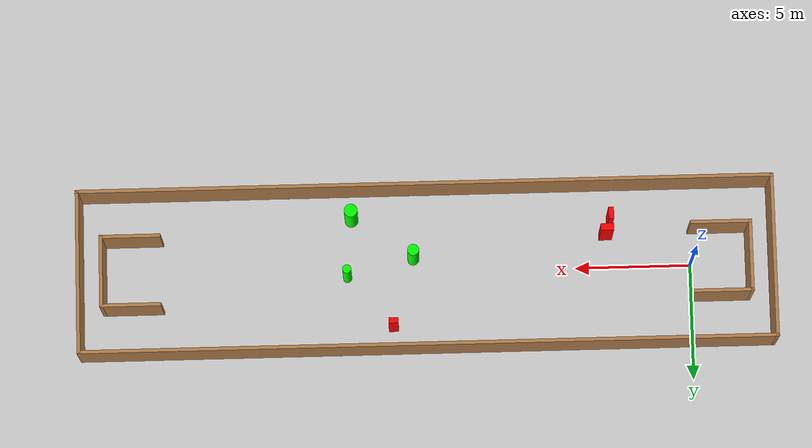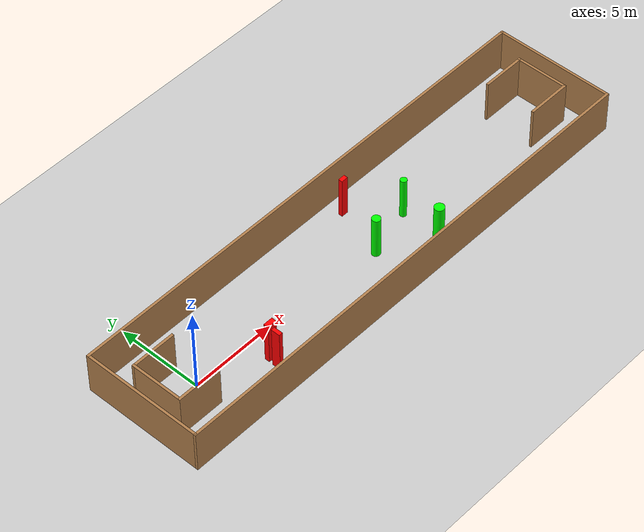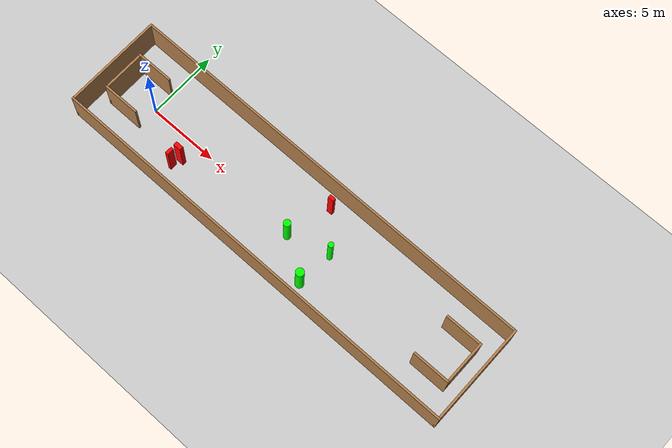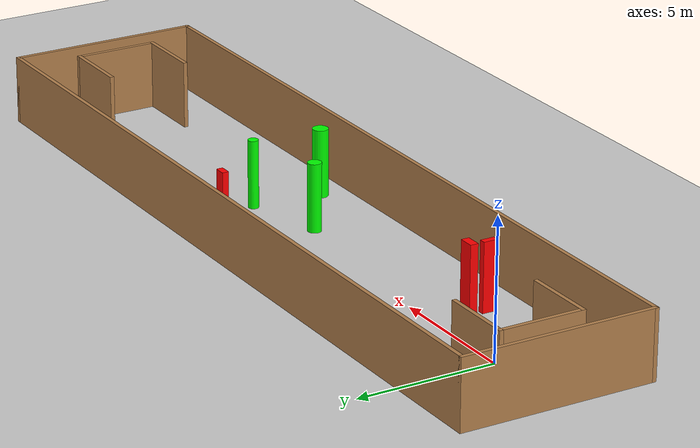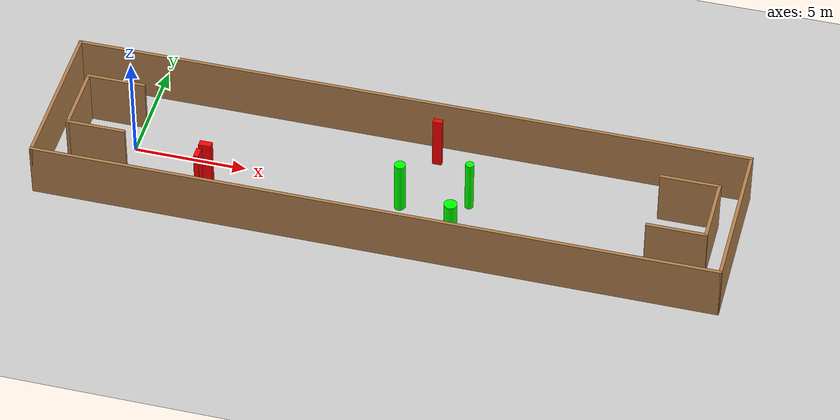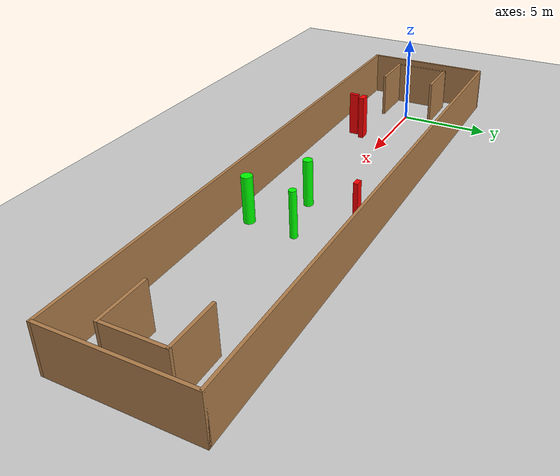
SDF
<sdf version="1.7">
 <world name="default">
  <light name="sun" type="directional">
   <pose>0 0 10 0 -0 0</pose>
   <diffuse>0.8 0.8 0.8 1</diffuse>
   <specular>0.2 0.2 0.2 1</specular>
   <attenuation>
    <range>1000</range>
    <constant>0.9</constant>
    <linear>0.01</linear>
    <quadratic>0.001</quadratic>
   </attenuation>
   <direction>-0.5 0.1 -0.9</direction>
   <spot><inner_angle>0</inner_angle><outer_angle>0</outer_angle><falloff>0</falloff></spot>
  </light>
  <model name="ground_plane">
   <static>1</static>
   <link name="link">
    <collision name="collision">
     <geometry><plane><normal>0 0 1</normal><size>100 100</size></plane></geometry>
     <surface>
      <contact><collide_bitmask>65535</collide_bitmask></contact>
      <friction><ode><mu>100</mu><mu2>50</mu2></ode></friction>
     </surface>
    </collision>
    <visual name="visual">
     <cast_shadows>0</cast_shadows>
     <geometry><plane><normal>0 0 1</normal><size>100 100</size></plane></geometry>
     <material>
      <script><uri>file://media/materials/scripts/gazebo.material</uri><name>Gazebo/Grey</name></script>
     </material>
    </visual>
   </link>
  </model>
  <gravity>0 0 -9.8</gravity>
  <magnetic_field>6e-06 2.3e-05 -4.2e-05</magnetic_field>
  <atmosphere type="adiabatic"/>
  <physics type="ode">
   <max_step_size>0.001</max_step_size>
   <real_time_factor>1</real_time_factor>
   <real_time_update_rate>1000</real_time_update_rate>
  </physics>
  <scene><ambient>0.4 0.4 0.4 1</ambient><background>0.7 0.7 0.7 1</background><shadows>1</shadows></scene>
  <spherical_coordinates>
   <surface_model>EARTH_WGS84</surface_model>
   <latitude_deg>0</latitude_deg>
   <longitude_deg>0</longitude_deg>
   <elevation>0</elevation>
   <heading_deg>0</heading_deg>
  </spherical_coordinates>
  <model name="my_base_walls">
   <link name="Wall_0">
    <collision name="Wall_0_Collision">
     <geometry><box><size>7.15 0.15 2.5</size></box></geometry>
     <pose>0 0 1.25 0 -0 0</pose>
    </collision>
    <visual name="Wall_0_Visual">
     <pose>0 0 1.25 0 -0 0</pose>
     <geometry><box><size>7.15 0.15 2.5</size></box></geometry>
     <material>
      <script><uri>file://media/materials/scripts/gazebo.material</uri><name>Gazebo/Wood</name></script>
      <ambient>1 1 1 1</ambient>
     </material>
     <meta><layer>0</layer></meta>
    </visual>
    <pose>-15 0 0 0 -0 1.5708</pose>
   </link>
   <link name="Wall_10">
    <collision name="Wall_10_Collision">
     <geometry><box><size>2.65 0.15 2.5</size></box></geometry>
     <pose>0 0 1.25 0 -0 0</pose>
    </collision>
    <visual name="Wall_10_Visual">
     <pose>0 0 1.25 0 -0 0</pose>
     <geometry><box><size>2.65 0.15 2.5</size></box></geometry>
     <material>
      <script><uri>file://media/materials/scripts/gazebo.material</uri><name>Gazebo/Wood</name></script>
      <ambient>1 1 1 1</ambient>
     </material>
     <meta><layer>0</layer></meta>
    </visual>
    <pose>-12.75 -1.5 0 0 -0 0</pose>
   </link>
   <link name="Wall_12">
    <collision name="Wall_12_Collision">
     <geometry><box><size>2.65 0.15 2.5</size></box></geometry>
     <pose>0 0 1.25 0 -0 0</pose>
    </collision>
    <visual name="Wall_12_Visual">
     <pose>0 0 1.25 0 -0 0</pose>
     <geometry><box><size>2.65 0.15 2.5</size></box></geometry>
     <material>
      <script><uri>file://media/materials/scripts/gazebo.material</uri><name>Gazebo/Wood</name></script>
      <ambient>1 1 1 1</ambient>
     </material>
     <meta><layer>0</layer></meta>
    </visual>
    <pose>-12.75 1.5 0 0 -0 0</pose>
   </link>
   <link name="Wall_14">
    <collision name="Wall_14_Collision">
     <geometry><box><size>3.15 0.15 2.5</size></box></geometry>
     <pose>0 0 1.25 0 -0 0</pose>
    </collision>
    <visual name="Wall_14_Visual">
     <pose>0 0 1.25 0 -0 0</pose>
     <geometry><box><size>3.15 0.15 2.5</size></box></geometry>
     <material>
      <script><uri>file://media/materials/scripts/gazebo.material</uri><name>Gazebo/Wood</name></script>
      <ambient>1 1 1 1</ambient>
     </material>
     <meta><layer>0</layer></meta>
    </visual>
    <pose>14 0 0 0 -0 -1.5708</pose>
   </link>
   <link name="Wall_15">
    <collision name="Wall_15_Collision">
     <geometry><box><size>2.65 0.15 2.5</size></box></geometry>
     <pose>0 0 1.25 0 -0 0</pose>
    </collision>
    <visual name="Wall_15_Visual">
     <pose>0 0 1.25 0 -0 0</pose>
     <geometry><box><size>2.65 0.15 2.5</size></box></geometry>
     <material>
      <script><uri>file://media/materials/scripts/gazebo.material</uri><name>Gazebo/Wood</name></script>
      <ambient>1 1 1 1</ambient>
     </material>
     <meta><layer>0</layer></meta>
    </visual>
    <pose>12.75 -1.5 0 0 -0 3.14159</pose>
   </link>
   <link name="Wall_17">
    <collision name="Wall_17_Collision">
     <geometry><box><size>2.65 0.15 2.5</size></box></geometry>
     <pose>0 0 1.25 0 -0 0</pose>
    </collision>
    <visual name="Wall_17_Visual">
     <pose>0 0 1.25 0 -0 0</pose>
     <geometry><box><size>2.65 0.15 2.5</size></box></geometry>
     <material>
      <script><uri>file://media/materials/scripts/gazebo.material</uri><name>Gazebo/Wood</name></script>
      <ambient>1 1 1 1</ambient>
     </material>
     <meta><layer>0</layer></meta>
    </visual>
    <pose>12.75 1.5 0 0 -0 3.14159</pose>
   </link>
   <link name="Wall_2">
    <collision name="Wall_2_Collision">
     <geometry><box><size>30.15 0.15 2.5</size></box></geometry>
     <pose>0 0 1.25 0 -0 0</pose>
    </collision>
    <visual name="Wall_2_Visual">
     <pose>0 0 1.25 0 -0 0</pose>
     <geometry><box><size>30.15 0.15 2.5</size></box></geometry>
     <material>
      <script><uri>file://media/materials/scripts/gazebo.material</uri><name>Gazebo/Wood</name></script>
      <ambient>1 1 1 1</ambient>
     </material>
     <meta><layer>0</layer></meta>
    </visual>
    <pose>-0 -3.5 0 0 -0 0</pose>
   </link>
   <link name="Wall_4">
    <collision name="Wall_4_Collision">
     <geometry><box><size>30.15 0.15 2.5</size></box></geometry>
     <pose>0 0 1.25 0 -0 0</pose>
    </collision>
    <visual name="Wall_4_Visual">
     <pose>0 0 1.25 0 -0 0</pose>
     <geometry><box><size>30.15 0.15 2.5</size></box></geometry>
     <material>
      <script><uri>file://media/materials/scripts/gazebo.material</uri><name>Gazebo/Wood</name></script>
      <ambient>1 1 1 1</ambient>
     </material>
     <meta><layer>0</layer></meta>
    </visual>
    <pose>-0 3.5 0 0 -0 0</pose>
   </link>
   <link name="Wall_6">
    <collision name="Wall_6_Collision">
     <geometry><box><size>7.15 0.15 2.5</size></box></geometry>
     <pose>0 0 1.25 0 -0 0</pose>
    </collision>
    <visual name="Wall_6_Visual">
     <pose>0 0 1.25 0 -0 0</pose>
     <geometry><box><size>7.15 0.15 2.5</size></box></geometry>
     <material>
      <script><uri>file://media/materials/scripts/gazebo.material</uri><name>Gazebo/Wood</name></script>
      <ambient>1 1 1 1</ambient>
     </material>
     <meta><layer>0</layer></meta>
    </visual>
    <pose>15 0 0 0 -0 -1.5708</pose>
   </link>
   <link name="Wall_9">
    <collision name="Wall_9_Collision">
     <geometry><box><size>3.15 0.15 2.5</size></box></geometry>
     <pose>0 0 1.25 0 -0 0</pose>
    </collision>
    <visual name="Wall_9_Visual">
     <pose>0 0 1.25 0 -0 0</pose>
     <geometry><box><size>3.15 0.15 2.5</size></box></geometry>
     <material>
      <script><uri>file://media/materials/scripts/gazebo.material</uri><name>Gazebo/Wood</name></script>
      <ambient>1 1 1 1</ambient>
     </material>
     <meta><layer>0</layer></meta>
    </visual>
    <pose>-14 0 0 0 -0 -1.5708</pose>
   </link>
   <static>1</static>
   <pose>11.5 0 0 0 -0 0</pose>
  </model>
  <model name="cylinder1">
   <static>1</static>
   <link name="link">
    <inertial>
     <mass>1</mass>
     <inertia><ixx>0.5</ixx><ixy>0</ixy><ixz>0</ixz><iyy>0.5</iyy><iyz>0</iyz><izz>1</izz></inertia>
    </inertial>
    <collision name="collision">
     <geometry><cylinder><radius>0.24789015502763445</radius><length>2.5</length></cylinder></geometry>
    </collision>
    <visual name="visual">
     <geometry><cylinder><radius>0.24789015502763445</radius><length>2.5</length></cylinder></geometry>
     <material>
      <ambient>0 1 0 1</ambient>
      <diffuse>0 1 0 1</diffuse>
      <specular>0.1 0.1 0.1 1</specular>
      <emissive>0 0 0 0</emissive>
     </material>
    </visual>
   </link>
   <pose>12.047593166340697 -0.5849074662198697 1.25 0 0 0</pose>
  </model>
  <model name="cylinder2">
   <static>1</static>
   <link name="link">
    <inertial>
     <mass>1</mass>
     <inertia><ixx>0.5</ixx><ixy>0</ixy><ixz>0</ixz><iyy>0.5</iyy><iyz>0</iyz><izz>1</izz></inertia>
    </inertial>
    <collision name="collision">
     <geometry><cylinder><radius>0.2891735433054752</radius><length>2.5</length></cylinder></geometry>
    </collision>
    <visual name="visual">
     <geometry><cylinder><radius>0.2891735433054752</radius><length>2.5</length></cylinder></geometry>
     <material>
      <ambient>0 1 0 1</ambient>
      <diffuse>0 1 0 1</diffuse>
      <specular>0.1 0.1 0.1 1</specular>
      <emissive>0 0 0 0</emissive>
     </material>
    </visual>
   </link>
   <pose>14.701991641916564 -2.376496130451939 1.25 0 0 0</pose>
  </model>
  <model name="cylinder3">
   <static>1</static>
   <link name="link">
    <inertial>
     <mass>1</mass>
     <inertia><ixx>0.5</ixx><ixy>0</ixy><ixz>0</ixz><iyy>0.5</iyy><iyz>0</iyz><izz>1</izz></inertia>
    </inertial>
    <collision name="collision">
     <geometry><cylinder><radius>0.1886985744785057</radius><length>2.5</length></cylinder></geometry>
    </collision>
    <visual name="visual">
     <geometry><cylinder><radius>0.1886985744785057</radius><length>2.5</length></cylinder></geometry>
     <material>
      <ambient>0 1 0 1</ambient>
      <diffuse>0 1 0 1</diffuse>
      <specular>0.1 0.1 0.1 1</specular>
      <emissive>0 0 0 0</emissive>
     </material>
    </visual>
   </link>
   <pose>14.926150218020888 0.171586402840592 1.25 0 0 0</pose>
  </model>
  <model name="box1">
   <static>1</static>
   <link name="link">
    <inertial>
     <mass>1</mass>
     <inertia><ixx>0.083</ixx><ixy>0</ixy><ixz>0</ixz><iyy>0.083</iyy><iyz>0</iyz><izz>0.083</izz></inertia>
    </inertial>
    <collision name="collision">
     <geometry><box><size>0.41428779150687023 0.23573981204662445 2.5</size></box></geometry>
    </collision>
    <visual name="visual">
     <geometry><box><size>0.41428779150687023 0.23573981204662445 2.5</size></box></geometry>
     <material>
      <ambient>1 0 0 1</ambient>
      <diffuse>1 0 0 1</diffuse>
      <specular>0.1 0.1 0.1 1</specular>
      <emissive>0 0 0 0</emissive>
     </material>
    </visual>
    <sensor name="my_contact" type="contact">
     <contact><collision>box_collision</collision><topic>__default_topic__</topic></contact>
    </sensor>
   </link>
   <pose>12.967037556242886 2.4536251089001935 1.25 0 0 0</pose>
  </model>
  <model name="box2">
   <static>1</static>
   <link name="link">
    <inertial>
     <mass>1</mass>
     <inertia><ixx>0.083</ixx><ixy>0</ixy><ixz>0</ixz><iyy>0.083</iyy><iyz>0</iyz><izz>0.083</izz></inertia>
    </inertial>
    <collision name="collision">
     <geometry><box><size>0.5581894818527335 0.29452117078237133 2.5</size></box></geometry>
    </collision>
    <visual name="visual">
     <geometry><box><size>0.5581894818527335 0.29452117078237133 2.5</size></box></geometry>
     <material>
      <ambient>1 0 0 1</ambient>
      <diffuse>1 0 0 1</diffuse>
      <specular>0.1 0.1 0.1 1</specular>
      <emissive>0 0 0 0</emissive>
     </material>
    </visual>
    <sensor name="my_contact" type="contact">
     <contact><collision>box_collision</collision><topic>__default_topic__</topic></contact>
    </sensor>
   </link>
   <pose>3.6495528513198465 -1.386920175474565 1.25 0 0 0</pose>
  </model>
  <model name="box3">
   <static>1</static>
   <link name="link">
    <inertial>
     <mass>1</mass>
     <inertia><ixx>0.083</ixx><ixy>0</ixy><ixz>0</ixz><iyy>0.083</iyy><iyz>0</iyz><izz>0.083</izz></inertia>
    </inertial>
    <collision name="collision">
     <geometry><box><size>0.22452546078865795 0.5130254918657428 2.5</size></box></geometry>
    </collision>
    <visual name="visual">
     <geometry><box><size>0.22452546078865795 0.5130254918657428 2.5</size></box></geometry>
     <material>
      <ambient>1 0 0 1</ambient>
      <diffuse>1 0 0 1</diffuse>
      <specular>0.1 0.1 0.1 1</specular>
      <emissive>0 0 0 0</emissive>
     </material>
    </visual>
    <sensor name="my_contact" type="contact">
     <contact><collision>box_collision</collision><topic>__default_topic__</topic></contact>
    </sensor>
   </link>
   <pose>3.4693086259262422 -1.998676604336334 1.25 0 0 0</pose>
  </model>
 </world>
</sdf>
